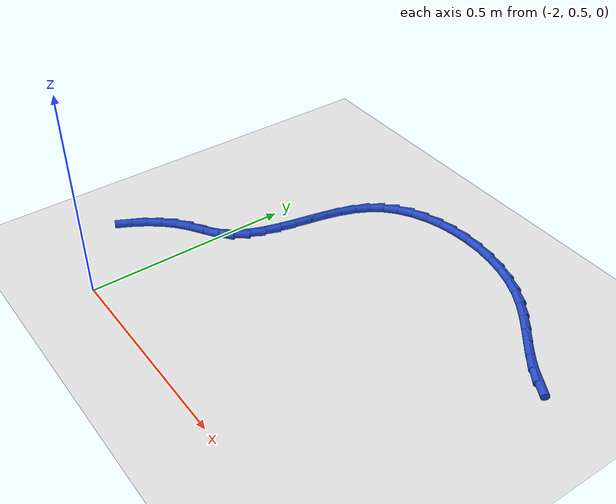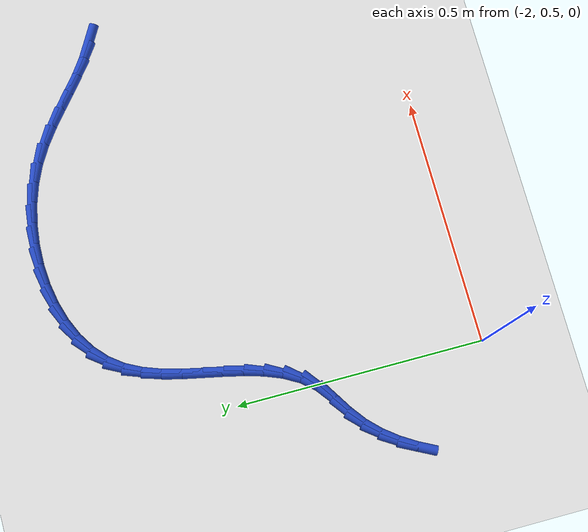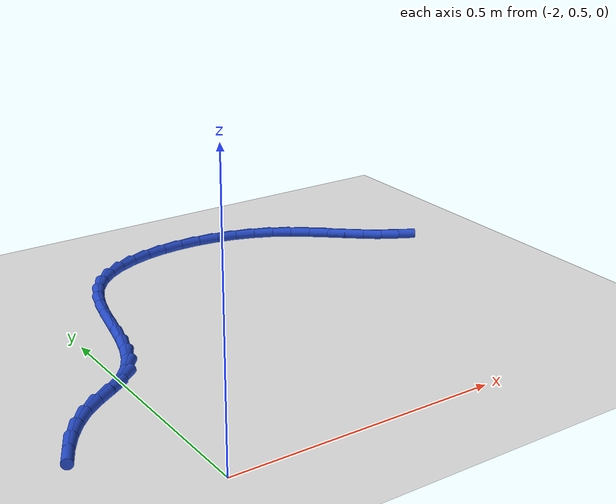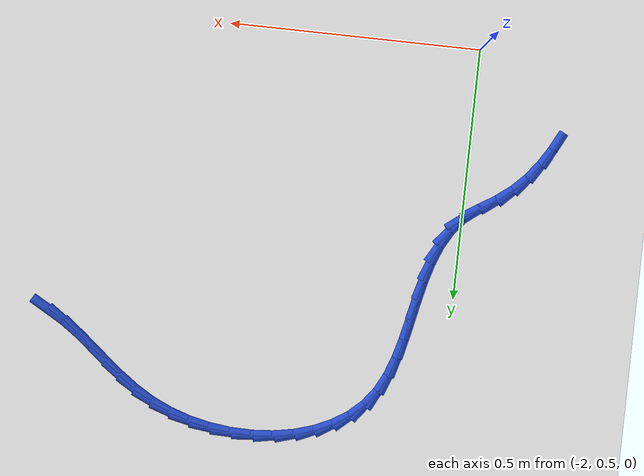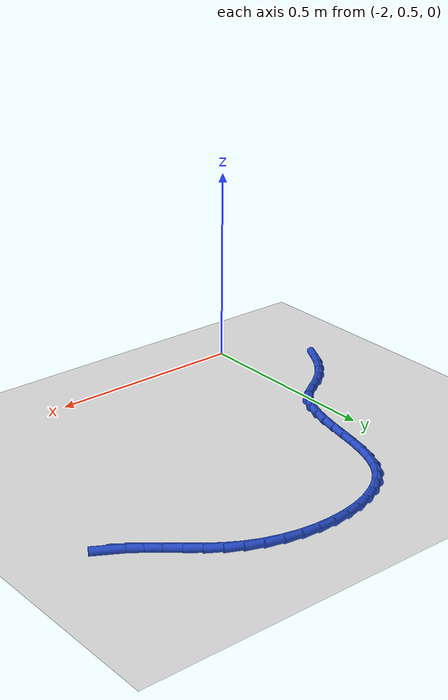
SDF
<sdf version="1.6">
 <world name="default">
  <model name="ground_plane">
   <static>1</static>
   <link name="link">
    <collision name="collision">
     <geometry><plane><normal>0 0 1</normal><size>100 100</size></plane></geometry>
     <surface><friction><ode><mu>100</mu><mu2>50</mu2></ode></friction></surface>
    </collision>
    <visual name="visual">
     <cast_shadows>0</cast_shadows>
     <geometry><plane><normal>0 0 1</normal><size>100 100</size></plane></geometry>
     <material>
      <script><uri>file://media/materials/scripts/gazebo.material</uri><name>Gazebo/WhiteGlow</name></script>
     </material>
    </visual>
   </link>
  </model>
  <model name="line">
   <link name="link_50">
    <pose>-1.2017907781969286 1.1052083358509976 0.01 0 1.57 -0.5198376043215917</pose>
    <collision name="collision">
     <geometry><cylinder><radius>0.01</radius><length>0.08</length></cylinder></geometry>
    </collision>
    <visual name="visual">
     <material>
      <script><name>Gazebo/Blue</name><uri>file://media/materials/scripts/gazebo.material</uri></script>
     </material>
     <geometry><cylinder><radius>0.01</radius><length>0.08</length></cylinder></geometry>
    </visual>
   </link>
   <link name="link_51">
    <pose>-1.2334870795388595 1.1233495940145137 0.01 0 1.57 -0.6181726960812451</pose>
    <collision name="collision">
     <geometry><cylinder><radius>0.01</radius><length>0.08</length></cylinder></geometry>
    </collision>
    <visual name="visual">
     <material>
      <script><name>Gazebo/Blue</name><uri>file://media/materials/scripts/gazebo.material</uri></script>
     </material>
     <geometry><cylinder><radius>0.01</radius><length>0.08</length></cylinder></geometry>
    </visual>
   </link>
   <link name="link_52">
    <pose>-1.2640207079785504 1.1450637053690556 0.01 0 1.57 -0.6748375878534358</pose>
    <collision name="collision">
     <geometry><cylinder><radius>0.01</radius><length>0.08</length></cylinder></geometry>
    </collision>
    <visual name="visual">
     <material>
      <script><name>Gazebo/Blue</name><uri>file://media/materials/scripts/gazebo.material</uri></script>
     </material>
     <geometry><cylinder><radius>0.01</radius><length>0.08</length></cylinder></geometry>
    </visual>
   </link>
   <link name="link_53">
    <pose>-1.2940830314724023 1.1691183293757728 0.01 0 1.57 -0.6933231745169215</pose>
    <collision name="collision">
     <geometry><cylinder><radius>0.01</radius><length>0.08</length></cylinder></geometry>
    </collision>
    <visual name="visual">
     <material>
      <script><name>Gazebo/Blue</name><uri>file://media/materials/scripts/gazebo.material</uri></script>
     </material>
     <geometry><cylinder><radius>0.01</radius><length>0.08</length></cylinder></geometry>
    </visual>
   </link>
   <link name="link_54">
    <pose>-1.3243654179768183 1.1942811254958166 0.01 0 1.57 -0.676372452242011</pose>
    <collision name="collision">
     <geometry><cylinder><radius>0.01</radius><length>0.08</length></cylinder></geometry>
    </collision>
    <visual name="visual">
     <material>
      <script><name>Gazebo/Blue</name><uri>file://media/materials/scripts/gazebo.material</uri></script>
     </material>
     <geometry><cylinder><radius>0.01</radius><length>0.08</length></cylinder></geometry>
    </visual>
   </link>
   <link name="link_55">
    <pose>-1.3555592354481987 1.219319753190338 0.01 0 1.57 -0.625398338599004</pose>
    <collision name="collision">
     <geometry><cylinder><radius>0.01</radius><length>0.08</length></cylinder></geometry>
    </collision>
    <visual name="visual">
     <material>
      <script><name>Gazebo/Blue</name><uri>file://media/materials/scripts/gazebo.material</uri></script>
     </material>
     <geometry><cylinder><radius>0.01</radius><length>0.08</length></cylinder></geometry>
    </visual>
   </link>
   <link name="link_56">
    <pose>-1.3883558518429455 1.2430018719204872 0.01 0 1.57 -0.5412321054823621</pose>
    <collision name="collision">
     <geometry><cylinder><radius>0.01</radius><length>0.08</length></cylinder></geometry>
    </collision>
    <visual name="visual">
     <material>
      <script><name>Gazebo/Blue</name><uri>file://media/materials/scripts/gazebo.material</uri></script>
     </material>
     <geometry><cylinder><radius>0.01</radius><length>0.08</length></cylinder></geometry>
    </visual>
   </link>
   <link name="link_57">
    <pose>-1.4234466351174613 1.2640951411474153 0.01 0 1.57 -0.43001432449342347</pose>
    <collision name="collision">
     <geometry><cylinder><radius>0.01</radius><length>0.08</length></cylinder></geometry>
    </collision>
    <visual name="visual">
     <material>
      <script><name>Gazebo/Blue</name><uri>file://media/materials/scripts/gazebo.material</uri></script>
     </material>
     <geometry><cylinder><radius>0.01</radius><length>0.08</length></cylinder></geometry>
    </visual>
   </link>
   <link name="link_58">
    <pose>-1.4613728881119246 1.281489575660048 0.01 0 1.57 -0.319586727207389</pose>
    <collision name="collision">
     <geometry><cylinder><radius>0.01</radius><length>0.08</length></cylinder></geometry>
    </collision>
    <visual name="visual">
     <material>
      <script><name>Gazebo/Blue</name><uri>file://media/materials/scripts/gazebo.material</uri></script>
     </material>
     <geometry><cylinder><radius>0.01</radius><length>0.08</length></cylinder></geometry>
    </visual>
   </link>
   <link name="link_59">
    <pose>-1.501731266618996 1.2948454065510082 0.01 0 1.57 -0.2172741119044394</pose>
    <collision name="collision">
     <geometry><cylinder><radius>0.01</radius><length>0.08</length></cylinder></geometry>
    </collision>
    <visual name="visual">
     <material>
      <script><name>Gazebo/Blue</name><uri>file://media/materials/scripts/gazebo.material</uri></script>
     </material>
     <geometry><cylinder><radius>0.01</radius><length>0.08</length></cylinder></geometry>
    </visual>
   </link>
   <link name="link_60">
    <pose>-1.5437517781112322 1.3041218109738946 0.01 0 1.57 -0.11959879294067871</pose>
    <collision name="collision">
     <geometry><cylinder><radius>0.01</radius><length>0.08</length></cylinder></geometry>
    </collision>
    <visual name="visual">
     <material>
      <script><name>Gazebo/Blue</name><uri>file://media/materials/scripts/gazebo.material</uri></script>
     </material>
     <geometry><cylinder><radius>0.01</radius><length>0.08</length></cylinder></geometry>
    </visual>
   </link>
   <link name="link_61">
    <pose>-1.5866636201544069 1.3092786264383711 0.01 0 1.57 -0.023165947955130356</pose>
    <collision name="collision">
     <geometry><cylinder><radius>0.01</radius><length>0.08</length></cylinder></geometry>
    </collision>
    <visual name="visual">
     <material>
      <script><name>Gazebo/Blue</name><uri>file://media/materials/scripts/gazebo.material</uri></script>
     </material>
     <geometry><cylinder><radius>0.01</radius><length>0.08</length></cylinder></geometry>
    </visual>
   </link>
   <link name="link_62">
    <pose>-1.6296959903142951 1.3102756904541013 0.01 0 1.57 0.07542745497583311</pose>
    <collision name="collision">
     <geometry><cylinder><radius>0.01</radius><length>0.08</length></cylinder></geometry>
    </collision>
    <visual name="visual">
     <material>
      <script><name>Gazebo/Blue</name><uri>file://media/materials/scripts/gazebo.material</uri></script>
     </material>
     <geometry><cylinder><radius>0.01</radius><length>0.08</length></cylinder></geometry>
    </visual>
   </link>
   <link name="link_63">
    <pose>-1.6720780861566715 1.3070728405307497 0.01 0 1.57 0.17974640441328882</pose>
    <collision name="collision">
     <geometry><cylinder><radius>0.01</radius><length>0.08</length></cylinder></geometry>
    </collision>
    <visual name="visual">
     <material>
      <script><name>Gazebo/Blue</name><uri>file://media/materials/scripts/gazebo.material</uri></script>
     </material>
     <geometry><cylinder><radius>0.01</radius><length>0.08</length></cylinder></geometry>
    </visual>
   </link>
   <link name="link_64">
    <pose>-1.7130391052473102 1.2996299141779806 0.01 0 1.57 0.29364245777921866</pose>
    <collision name="collision">
     <geometry><cylinder><radius>0.01</radius><length>0.08</length></cylinder></geometry>
    </collision>
    <visual name="visual">
     <material>
      <script><name>Gazebo/Blue</name><uri>file://media/materials/scripts/gazebo.material</uri></script>
     </material>
     <geometry><cylinder><radius>0.01</radius><length>0.08</length></cylinder></geometry>
    </visual>
   </link>
   <link name="link_65">
    <pose>-1.7518082451519856 1.2879067489054572 0.01 0 1.57 0.4212423567707144</pose>
    <collision name="collision">
     <geometry><cylinder><radius>0.01</radius><length>0.08</length></cylinder></geometry>
    </collision>
    <visual name="visual">
     <material>
      <script><name>Gazebo/Blue</name><uri>file://media/materials/scripts/gazebo.material</uri></script>
     </material>
     <geometry><cylinder><radius>0.01</radius><length>0.08</length></cylinder></geometry>
    </visual>
   </link>
   <link name="link_66">
    <pose>-1.7876147034364733 1.2718631822228443 0.01 0 1.57 0.566597298588828</pose>
    <collision name="collision">
     <geometry><cylinder><radius>0.01</radius><length>0.08</length></cylinder></geometry>
    </collision>
    <visual name="visual">
     <material>
      <script><name>Gazebo/Blue</name><uri>file://media/materials/scripts/gazebo.material</uri></script>
     </material>
     <geometry><cylinder><radius>0.01</radius><length>0.08</length></cylinder></geometry>
    </visual>
   </link>
   <link name="link_67">
    <pose>-1.8196876776665463 1.2514590516398054 0.01 0 1.57 0.7326755634703215</pose>
    <collision name="collision">
     <geometry><cylinder><radius>0.01</radius><length>0.08</length></cylinder></geometry>
    </collision>
    <visual name="visual">
     <material>
      <script><name>Gazebo/Blue</name><uri>file://media/materials/scripts/gazebo.material</uri></script>
     </material>
     <geometry><cylinder><radius>0.01</radius><length>0.08</length></cylinder></geometry>
    </visual>
   </link>
   <link name="link_68">
    <pose>-1.8472563654079797 1.2266541946660052 0.01 0 1.57 0.9185361867600336</pose>
    <collision name="collision">
     <geometry><cylinder><radius>0.01</radius><length>0.08</length></cylinder></geometry>
    </collision>
    <visual name="visual">
     <material>
      <script><name>Gazebo/Blue</name><uri>file://media/materials/scripts/gazebo.material</uri></script>
     </material>
     <geometry><cylinder><radius>0.01</radius><length>0.08</length></cylinder></geometry>
    </visual>
   </link>
   <link name="link_69">
    <pose>-1.8695815266014553 1.1974242416854373 0.01 0 1.57 1.0926973617765803</pose>
    <collision name="collision">
     <geometry><cylinder><radius>0.01</radius><length>0.08</length></cylinder></geometry>
    </collision>
    <visual name="visual">
     <material>
      <script><name>Gazebo/Blue</name><uri>file://media/materials/scripts/gazebo.material</uri></script>
     </material>
     <geometry><cylinder><radius>0.01</radius><length>0.08</length></cylinder></geometry>
    </visual>
   </link>
   <link name="link_70">
    <pose>-1.8868055108168684 1.1641859443306186 0.01 0 1.57 1.2213389026172246</pose>
    <collision name="collision">
     <geometry><cylinder><radius>0.01</radius><length>0.08</length></cylinder></geometry>
    </collision>
    <visual name="visual">
     <material>
      <script><name>Gazebo/Blue</name><uri>file://media/materials/scripts/gazebo.material</uri></script>
     </material>
     <geometry><cylinder><radius>0.01</radius><length>0.08</length></cylinder></geometry>
    </visual>
   </link>
   <link name="link_71">
    <pose>-1.9000485247503276 1.1278453448768957 0.01 0 1.57 1.306236332511871</pose>
    <collision name="collision">
     <geometry><cylinder><radius>0.01</radius><length>0.08</length></cylinder></geometry>
    </collision>
    <visual name="visual">
     <material>
      <script><name>Gazebo/Blue</name><uri>file://media/materials/scripts/gazebo.material</uri></script>
     </material>
     <geometry><cylinder><radius>0.01</radius><length>0.08</length></cylinder></geometry>
    </visual>
   </link>
   <link name="link_72">
    <pose>-1.9104816558212234 1.0893339448013077 0.01 0 1.57 1.3530661911391246</pose>
    <collision name="collision">
     <geometry><cylinder><radius>0.01</radius><length>0.08</length></cylinder></geometry>
    </collision>
    <visual name="visual">
     <material>
      <script><name>Gazebo/Blue</name><uri>file://media/materials/scripts/gazebo.material</uri></script>
     </material>
     <geometry><cylinder><radius>0.01</radius><length>0.08</length></cylinder></geometry>
    </visual>
   </link>
   <link name="link_73">
    <pose>-1.9192759914489497 1.0495832455808942 0.01 0 1.57 1.3658529866189828</pose>
    <collision name="collision">
     <geometry><cylinder><radius>0.01</radius><length>0.08</length></cylinder></geometry>
    </collision>
    <visual name="visual">
     <material>
      <script><name>Gazebo/Blue</name><uri>file://media/materials/scripts/gazebo.material</uri></script>
     </material>
     <geometry><cylinder><radius>0.01</radius><length>0.08</length></cylinder></geometry>
    </visual>
   </link>
   <link name="link_74">
    <pose>-1.9276026190528983 1.0095247486926957 0.01 0 1.57 1.3456914117817786</pose>
    <collision name="collision">
     <geometry><cylinder><radius>0.01</radius><length>0.08</length></cylinder></geometry>
    </collision>
    <visual name="visual">
     <material>
      <script><name>Gazebo/Blue</name><uri>file://media/materials/scripts/gazebo.material</uri></script>
     </material>
     <geometry><cylinder><radius>0.01</radius><length>0.08</length></cylinder></geometry>
    </visual>
   </link>
   <link name="link_75">
    <pose>-1.9366326260524613 0.9700899556137514 0.01 0 1.57 1.2905029116144038</pose>
    <collision name="collision">
     <geometry><cylinder><radius>0.01</radius><length>0.08</length></cylinder></geometry>
    </collision>
    <visual name="visual">
     <material>
      <script><name>Gazebo/Blue</name><uri>file://media/materials/scripts/gazebo.material</uri></script>
     </material>
     <geometry><cylinder><radius>0.01</radius><length>0.08</length></cylinder></geometry>
    </visual>
   </link>
   <link name="link_76">
    <pose>-1.9475370998670316 0.932210367821101 0.01 0 1.57 1.1953450626386453</pose>
    <collision name="collision">
     <geometry><cylinder><radius>0.01</radius><length>0.08</length></cylinder></geometry>
    </collision>
    <visual name="visual">
     <material>
      <script><name>Gazebo/Blue</name><uri>file://media/materials/scripts/gazebo.material</uri></script>
     </material>
     <geometry><cylinder><radius>0.01</radius><length>0.08</length></cylinder></geometry>
    </visual>
   </link>
   <link name="link_77">
    <pose>-1.9614871279160013 0.8968174867917849 0.01 0 1.57 1.0541191095070894</pose>
    <collision name="collision">
     <geometry><cylinder><radius>0.01</radius><length>0.08</length></cylinder></geometry>
    </collision>
    <visual name="visual">
     <material>
      <script><name>Gazebo/Blue</name><uri>file://media/materials/scripts/gazebo.material</uri></script>
     </material>
     <geometry><cylinder><radius>0.01</radius><length>0.08</length></cylinder></geometry>
    </visual>
   </link>
   <link name="link_78">
    <pose>-1.979653797618762 0.8648428140028421 0.01 0 1.57 0.8647663561324328</pose>
    <collision name="collision">
     <geometry><cylinder><radius>0.01</radius><length>0.08</length></cylinder></geometry>
    </collision>
    <visual name="visual">
     <material>
      <script><name>Gazebo/Blue</name><uri>file://media/materials/scripts/gazebo.material</uri></script>
     </material>
     <geometry><cylinder><radius>0.01</radius><length>0.08</length></cylinder></geometry>
    </visual>
   </link>
   <link name="link_79">
    <pose>-2.0032081963947066 0.8372178509313122 0.01 0 1.57 0.6525476335648996</pose>
    <collision name="collision">
     <geometry><cylinder><radius>0.01</radius><length>0.08</length></cylinder></geometry>
    </collision>
    <visual name="visual">
     <material>
      <script><name>Gazebo/Blue</name><uri>file://media/materials/scripts/gazebo.material</uri></script>
     </material>
     <geometry><cylinder><radius>0.01</radius><length>0.08</length></cylinder></geometry>
    </visual>
   </link>
   <link name="link_80">
    <pose>-2.0329047486323426 0.8145227910618767 0.01 0 1.57 0.5646361066583947</pose>
    <collision name="collision">
     <geometry><cylinder><radius>0.01</radius><length>0.08</length></cylinder></geometry>
    </collision>
    <visual name="visual">
     <material>
      <script><name>Gazebo/Blue</name><uri>file://media/materials/scripts/gazebo.material</uri></script>
     </material>
     <geometry><cylinder><radius>0.01</radius><length>0.08</length></cylinder></geometry>
    </visual>
   </link>
   <link name="link_81">
    <pose>-2.065438407872847 0.7939150990847149 0.01 0 1.57 0.6492512272522589</pose>
    <collision name="collision">
     <geometry><cylinder><radius>0.01</radius><length>0.08</length></cylinder></geometry>
    </collision>
    <visual name="visual">
     <material>
      <script><name>Gazebo/Blue</name><uri>file://media/materials/scripts/gazebo.material</uri></script>
     </material>
     <geometry><cylinder><radius>0.01</radius><length>0.08</length></cylinder></geometry>
    </visual>
   </link>
   <link name="link_82">
    <pose>-2.0956410918010655 0.7709905499697063 0.01 0 1.57 0.7866336906567553</pose>
    <collision name="collision">
     <geometry><cylinder><radius>0.01</radius><length>0.08</length></cylinder></geometry>
    </collision>
    <visual name="visual">
     <material>
      <script><name>Gazebo/Blue</name><uri>file://media/materials/scripts/gazebo.material</uri></script>
     </material>
     <geometry><cylinder><radius>0.01</radius><length>0.08</length></cylinder></geometry>
    </visual>
   </link>
   <link name="link_83">
    <pose>-2.122032541444106 0.7445338049082783 0.01 0 1.57 0.909089655823953</pose>
    <collision name="collision">
     <geometry><cylinder><radius>0.01</radius><length>0.08</length></cylinder></geometry>
    </collision>
    <visual name="visual">
     <material>
      <script><name>Gazebo/Blue</name><uri>file://media/materials/scripts/gazebo.material</uri></script>
     </material>
     <geometry><cylinder><radius>0.01</radius><length>0.08</length></cylinder></geometry>
    </visual>
   </link>
   <link name="link_84">
    <pose>-2.145046787123253 0.7149845381861332 0.01 0 1.57 1.0128849155173072</pose>
    <collision name="collision">
     <geometry><cylinder><radius>0.01</radius><length>0.08</length></cylinder></geometry>
    </collision>
    <visual name="visual">
     <material>
      <script><name>Gazebo/Blue</name><uri>file://media/materials/scripts/gazebo.material</uri></script>
     </material>
     <geometry><cylinder><radius>0.01</radius><length>0.08</length></cylinder></geometry>
    </visual>
   </link>
   <link name="link_85">
    <pose>-2.165133745542579 0.6827961587797605 0.01 0 1.57 1.0973630807454284</pose>
    <collision name="collision">
     <geometry><cylinder><radius>0.01</radius><length>0.08</length></cylinder></geometry>
    </collision>
    <visual name="visual">
     <material>
      <script><name>Gazebo/Blue</name><uri>file://media/materials/scripts/gazebo.material</uri></script>
     </material>
     <geometry><cylinder><radius>0.01</radius><length>0.08</length></cylinder></geometry>
    </visual>
   </link>
  </model>
 </world>
</sdf>
